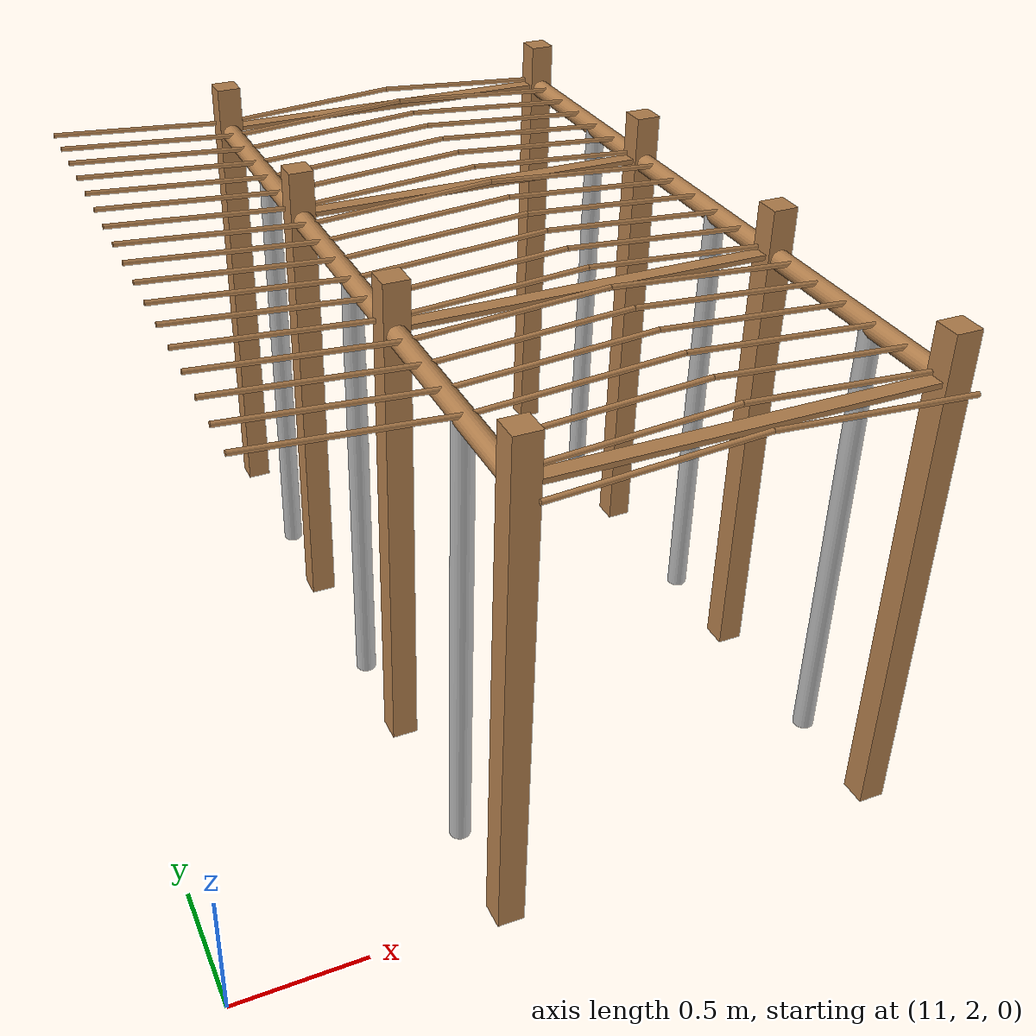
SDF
<sdf version="1.4">
 <model name="pergola">
  <include><name>post_90</name><pose>12.0 2.0 0 0 0 0</pose><uri>model://post</uri></include>
  <include><name>post_91</name><pose>12.0 3.0 0 0 0 0</pose><uri>model://post</uri></include>
  <include><name>post_92</name><pose>12.0 4.0 0 0 0 0</pose><uri>model://post</uri></include>
  <include><name>post_93</name><pose>12.0 5.0 0 0 0 0</pose><uri>model://post</uri></include>
  <include><name>post_101</name><pose>13.5 2.0 0 0 0 0</pose><uri>model://post</uri></include>
  <include><name>post_102</name><pose>13.5 3.0 0 0 0 0</pose><uri>model://post</uri></include>
  <include><name>post_103</name><pose>13.5 4.0 0 0 0 0</pose><uri>model://post</uri></include>
  <include><name>post_104</name><pose>13.5 5.0 0 0 0 0</pose><uri>model://post</uri></include>
  <link name="beam_90">
   <pose>12.75 2.0 1.81 0 0 0</pose>
   <collision name="collision"><geometry><box><size>1.5 0.06 0.02</size></box></geometry></collision>
   <visual name="visual">
    <geometry><box><size>1.5 0.06 0.02</size></box></geometry>
    <material><script><name>Gazebo/Wood</name></script></material>
   </visual>
   <inertial>
    <mass>5</mass>
    <inertia>
     <ixx>0.0016666666666666668</ixx>
     <ixy>0.0</ixy>
     <ixz>0.0</ixz>
     <iyy>0.9390000000000001</iyy>
     <iyz>0.0</iyz>
     <izz>0.9376666666666665</izz>
    </inertia>
   </inertial>
  </link>
  <link name="beam_91">
   <pose>12.75 3.0 1.81 0 0 0</pose>
   <collision name="collision"><geometry><box><size>1.5 0.06 0.02</size></box></geometry></collision>
   <visual name="visual">
    <geometry><box><size>1.5 0.06 0.02</size></box></geometry>
    <material><script><name>Gazebo/Wood</name></script></material>
   </visual>
   <inertial>
    <mass>5</mass>
    <inertia>
     <ixx>0.0016666666666666668</ixx>
     <ixy>0.0</ixy>
     <ixz>0.0</ixz>
     <iyy>0.9390000000000001</iyy>
     <iyz>0.0</iyz>
     <izz>0.9376666666666665</izz>
    </inertia>
   </inertial>
  </link>
  <link name="beam_92">
   <pose>12.75 4.0 1.81 0 0 0</pose>
   <collision name="collision"><geometry><box><size>1.5 0.06 0.02</size></box></geometry></collision>
   <visual name="visual">
    <geometry><box><size>1.5 0.06 0.02</size></box></geometry>
    <material><script><name>Gazebo/Wood</name></script></material>
   </visual>
   <inertial>
    <mass>5</mass>
    <inertia>
     <ixx>0.0016666666666666668</ixx>
     <ixy>0.0</ixy>
     <ixz>0.0</ixz>
     <iyy>0.9390000000000001</iyy>
     <iyz>0.0</iyz>
     <izz>0.9376666666666665</izz>
    </inertia>
   </inertial>
  </link>
  <link name="beam_93">
   <pose>12.75 5.0 1.81 0 0 0</pose>
   <collision name="collision"><geometry><box><size>1.5 0.06 0.02</size></box></geometry></collision>
   <visual name="visual">
    <geometry><box><size>1.5 0.06 0.02</size></box></geometry>
    <material><script><name>Gazebo/Wood</name></script></material>
   </visual>
   <inertial>
    <mass>5</mass>
    <inertia>
     <ixx>0.0016666666666666668</ixx>
     <ixy>0.0</ixy>
     <ixz>0.0</ixz>
     <iyy>0.9390000000000001</iyy>
     <iyz>0.0</iyz>
     <izz>0.9376666666666665</izz>
    </inertia>
   </inertial>
  </link>
  <include><name>tree_82</name><pose>12.0 2.4 0 0 0 0</pose><uri>model://tree_trunk</uri></include>
  <include><name>tree_83</name><pose>12.0 3.4 0 0 0 0</pose><uri>model://tree_trunk</uri></include>
  <include><name>tree_84</name><pose>12.0 4.4 0 0 0 0</pose><uri>model://tree_trunk</uri></include>
  <include><name>tree_92</name><pose>13.5 2.4 0 0 0 0</pose><uri>model://tree_trunk</uri></include>
  <include><name>tree_93</name><pose>13.5 3.4 0 0 0 0</pose><uri>model://tree_trunk</uri></include>
  <include><name>tree_94</name><pose>13.5 4.4 0 0 0 0</pose><uri>model://tree_trunk</uri></include>
  <link name="baseBranch_82">
   <pose>12.0 2.5 1.8 1.5707963267948966 0 0</pose>
   <collision name="collision">
    <geometry><cylinder><radius>0.04</radius><length>0.94</length></cylinder></geometry>
   </collision>
   <visual name="visual">
    <geometry><cylinder><radius>0.04</radius><length>0.94</length></cylinder></geometry>
    <material><script><name>Gazebo/WoodFloor</name></script></material>
   </visual>
   <inertial>
    <mass>10</mass>
    <inertia>
     <ixx>0.7403333333333334</ixx>
     <ixy>0.0</ixy>
     <ixz>0.0</ixz>
     <iyy>0.7403333333333334</iyy>
     <iyz>0.0</iyz>
     <izz>0.008</izz>
    </inertia>
   </inertial>
  </link>
  <link name="baseBranch_83">
   <pose>12.0 3.5 1.8 1.5707963267948966 0 0</pose>
   <collision name="collision">
    <geometry><cylinder><radius>0.04</radius><length>0.94</length></cylinder></geometry>
   </collision>
   <visual name="visual">
    <geometry><cylinder><radius>0.04</radius><length>0.94</length></cylinder></geometry>
    <material><script><name>Gazebo/WoodFloor</name></script></material>
   </visual>
   <inertial>
    <mass>10</mass>
    <inertia>
     <ixx>0.7403333333333334</ixx>
     <ixy>0.0</ixy>
     <ixz>0.0</ixz>
     <iyy>0.7403333333333334</iyy>
     <iyz>0.0</iyz>
     <izz>0.008</izz>
    </inertia>
   </inertial>
  </link>
  <link name="baseBranch_84">
   <pose>12.0 4.5 1.8 1.5707963267948966 0 0</pose>
   <collision name="collision">
    <geometry><cylinder><radius>0.04</radius><length>0.94</length></cylinder></geometry>
   </collision>
   <visual name="visual">
    <geometry><cylinder><radius>0.04</radius><length>0.94</length></cylinder></geometry>
    <material><script><name>Gazebo/WoodFloor</name></script></material>
   </visual>
   <inertial>
    <mass>10</mass>
    <inertia>
     <ixx>0.7403333333333334</ixx>
     <ixy>0.0</ixy>
     <ixz>0.0</ixz>
     <iyy>0.7403333333333334</iyy>
     <iyz>0.0</iyz>
     <izz>0.008</izz>
    </inertia>
   </inertial>
  </link>
  <link name="baseBranch_92">
   <pose>13.5 2.5 1.8 1.5707963267948966 0 0</pose>
   <collision name="collision">
    <geometry><cylinder><radius>0.04</radius><length>0.94</length></cylinder></geometry>
   </collision>
   <visual name="visual">
    <geometry><cylinder><radius>0.04</radius><length>0.94</length></cylinder></geometry>
    <material><script><name>Gazebo/WoodFloor</name></script></material>
   </visual>
   <inertial>
    <mass>10</mass>
    <inertia>
     <ixx>0.7403333333333334</ixx>
     <ixy>0.0</ixy>
     <ixz>0.0</ixz>
     <iyy>0.7403333333333334</iyy>
     <iyz>0.0</iyz>
     <izz>0.008</izz>
    </inertia>
   </inertial>
  </link>
  <link name="baseBranch_93">
   <pose>13.5 3.5 1.8 1.5707963267948966 0 0</pose>
   <collision name="collision">
    <geometry><cylinder><radius>0.04</radius><length>0.94</length></cylinder></geometry>
   </collision>
   <visual name="visual">
    <geometry><cylinder><radius>0.04</radius><length>0.94</length></cylinder></geometry>
    <material><script><name>Gazebo/WoodFloor</name></script></material>
   </visual>
   <inertial>
    <mass>10</mass>
    <inertia>
     <ixx>0.7403333333333334</ixx>
     <ixy>0.0</ixy>
     <ixz>0.0</ixz>
     <iyy>0.7403333333333334</iyy>
     <iyz>0.0</iyz>
     <izz>0.008</izz>
    </inertia>
   </inertial>
  </link>
  <link name="baseBranch_94">
   <pose>13.5 4.5 1.8 1.5707963267948966 0 0</pose>
   <collision name="collision">
    <geometry><cylinder><radius>0.04</radius><length>0.94</length></cylinder></geometry>
   </collision>
   <visual name="visual">
    <geometry><cylinder><radius>0.04</radius><length>0.94</length></cylinder></geometry>
    <material><script><name>Gazebo/WoodFloor</name></script></material>
   </visual>
   <inertial>
    <mass>10</mass>
    <inertia>
     <ixx>0.7403333333333334</ixx>
     <ixy>0.0</ixy>
     <ixz>0.0</ixz>
     <iyy>0.7403333333333334</iyy>
     <iyz>0.0</iyz>
     <izz>0.008</izz>
    </inertia>
   </inertial>
  </link>
  <link name="vine_869">
   <pose>11.625 2.363333333333333 1.85 0 -1.5042281630190728 0</pose>
   <collision name="collision">
    <geometry><cylinder><radius>0.01</radius><length>0.7516648189186453</length></cylinder></geometry>
   </collision>
   <visual name="visual">
    <geometry><cylinder><radius>0.01</radius><length>0.7516648189186453</length></cylinder></geometry>
    <material><script><name>Gazebo/WoodFloor</name></script></material>
   </visual>
   <inertial>
    <mass>5</mass>
    <inertia>
     <ixx>0.23554166666666657</ixx>
     <ixy>0.0</ixy>
     <ixz>0.0</ixz>
     <iyy>0.23554166666666657</iyy>
     <iyz>0.0</iyz>
     <izz>0.00025</izz>
    </inertia>
   </inertial>
  </link>
  <link name="vine_871">
   <pose>11.625 2.53 1.85 0 -1.5042281630190728 0</pose>
   <collision name="collision">
    <geometry><cylinder><radius>0.01</radius><length>0.7516648189186453</length></cylinder></geometry>
   </collision>
   <visual name="visual">
    <geometry><cylinder><radius>0.01</radius><length>0.7516648189186453</length></cylinder></geometry>
    <material><script><name>Gazebo/WoodFloor</name></script></material>
   </visual>
   <inertial>
    <mass>5</mass>
    <inertia>
     <ixx>0.23554166666666657</ixx>
     <ixy>0.0</ixy>
     <ixz>0.0</ixz>
     <iyy>0.23554166666666657</iyy>
     <iyz>0.0</iyz>
     <izz>0.00025</izz>
    </inertia>
   </inertial>
  </link>
  <link name="vine_873">
   <pose>11.625 2.6966666666666663 1.85 0 -1.5042281630190728 0</pose>
   <collision name="collision">
    <geometry><cylinder><radius>0.01</radius><length>0.7516648189186453</length></cylinder></geometry>
   </collision>
   <visual name="visual">
    <geometry><cylinder><radius>0.01</radius><length>0.7516648189186453</length></cylinder></geometry>
    <material><script><name>Gazebo/WoodFloor</name></script></material>
   </visual>
   <inertial>
    <mass>5</mass>
    <inertia>
     <ixx>0.23554166666666657</ixx>
     <ixy>0.0</ixy>
     <ixz>0.0</ixz>
     <iyy>0.23554166666666657</iyy>
     <iyz>0.0</iyz>
     <izz>0.00025</izz>
    </inertia>
   </inertial>
  </link>
  <link name="vine_875">
   <pose>11.625 2.863333333333333 1.85 0 -1.5042281630190728 0</pose>
   <collision name="collision">
    <geometry><cylinder><radius>0.01</radius><length>0.7516648189186453</length></cylinder></geometry>
   </collision>
   <visual name="visual">
    <geometry><cylinder><radius>0.01</radius><length>0.7516648189186453</length></cylinder></geometry>
    <material><script><name>Gazebo/WoodFloor</name></script></material>
   </visual>
   <inertial>
    <mass>5</mass>
    <inertia>
     <ixx>0.23554166666666657</ixx>
     <ixy>0.0</ixy>
     <ixz>0.0</ixz>
     <iyy>0.23554166666666657</iyy>
     <iyz>0.0</iyz>
     <izz>0.00025</izz>
    </inertia>
   </inertial>
  </link>
  <link name="vine_877">
   <pose>11.625 3.03 1.85 0 -1.5042281630190728 0</pose>
   <collision name="collision">
    <geometry><cylinder><radius>0.01</radius><length>0.7516648189186453</length></cylinder></geometry>
   </collision>
   <visual name="visual">
    <geometry><cylinder><radius>0.01</radius><length>0.7516648189186453</length></cylinder></geometry>
    <material><script><name>Gazebo/WoodFloor</name></script></material>
   </visual>
   <inertial>
    <mass>5</mass>
    <inertia>
     <ixx>0.23554166666666657</ixx>
     <ixy>0.0</ixy>
     <ixz>0.0</ixz>
     <iyy>0.23554166666666657</iyy>
     <iyz>0.0</iyz>
     <izz>0.00025</izz>
    </inertia>
   </inertial>
  </link>
  <link name="vine_879">
   <pose>11.625 3.1966666666666663 1.85 0 -1.5042281630190728 0</pose>
   <collision name="collision">
    <geometry><cylinder><radius>0.01</radius><length>0.7516648189186453</length></cylinder></geometry>
   </collision>
   <visual name="visual">
    <geometry><cylinder><radius>0.01</radius><length>0.7516648189186453</length></cylinder></geometry>
    <material><script><name>Gazebo/WoodFloor</name></script></material>
   </visual>
   <inertial>
    <mass>5</mass>
    <inertia>
     <ixx>0.23554166666666657</ixx>
     <ixy>0.0</ixy>
     <ixz>0.0</ixz>
     <iyy>0.23554166666666657</iyy>
     <iyz>0.0</iyz>
     <izz>0.00025</izz>
    </inertia>
   </inertial>
  </link>
  <link name="vine_881">
   <pose>11.625 3.363333333333333 1.85 0 -1.5042281630190728 0</pose>
   <collision name="collision">
    <geometry><cylinder><radius>0.01</radius><length>0.7516648189186453</length></cylinder></geometry>
   </collision>
   <visual name="visual">
    <geometry><cylinder><radius>0.01</radius><length>0.7516648189186453</length></cylinder></geometry>
    <material><script><name>Gazebo/WoodFloor</name></script></material>
   </visual>
   <inertial>
    <mass>5</mass>
    <inertia>
     <ixx>0.23554166666666657</ixx>
     <ixy>0.0</ixy>
     <ixz>0.0</ixz>
     <iyy>0.23554166666666657</iyy>
     <iyz>0.0</iyz>
     <izz>0.00025</izz>
    </inertia>
   </inertial>
  </link>
  <link name="vine_883">
   <pose>11.625 3.53 1.85 0 -1.5042281630190728 0</pose>
   <collision name="collision">
    <geometry><cylinder><radius>0.01</radius><length>0.7516648189186453</length></cylinder></geometry>
   </collision>
   <visual name="visual">
    <geometry><cylinder><radius>0.01</radius><length>0.7516648189186453</length></cylinder></geometry>
    <material><script><name>Gazebo/WoodFloor</name></script></material>
   </visual>
   <inertial>
    <mass>5</mass>
    <inertia>
     <ixx>0.23554166666666657</ixx>
     <ixy>0.0</ixy>
     <ixz>0.0</ixz>
     <iyy>0.23554166666666657</iyy>
     <iyz>0.0</iyz>
     <izz>0.00025</izz>
    </inertia>
   </inertial>
  </link>
  <link name="vine_885">
   <pose>11.625 3.6966666666666663 1.85 0 -1.5042281630190728 0</pose>
   <collision name="collision">
    <geometry><cylinder><radius>0.01</radius><length>0.7516648189186453</length></cylinder></geometry>
   </collision>
   <visual name="visual">
    <geometry><cylinder><radius>0.01</radius><length>0.7516648189186453</length></cylinder></geometry>
    <material><script><name>Gazebo/WoodFloor</name></script></material>
   </visual>
   <inertial>
    <mass>5</mass>
    <inertia>
     <ixx>0.23554166666666657</ixx>
     <ixy>0.0</ixy>
     <ixz>0.0</ixz>
     <iyy>0.23554166666666657</iyy>
     <iyz>0.0</iyz>
     <izz>0.00025</izz>
    </inertia>
   </inertial>
  </link>
  <link name="vine_887">
   <pose>11.625 3.863333333333333 1.85 0 -1.5042281630190728 0</pose>
   <collision name="collision">
    <geometry><cylinder><radius>0.01</radius><length>0.7516648189186453</length></cylinder></geometry>
   </collision>
   <visual name="visual">
    <geometry><cylinder><radius>0.01</radius><length>0.7516648189186453</length></cylinder></geometry>
    <material><script><name>Gazebo/WoodFloor</name></script></material>
   </visual>
   <inertial>
    <mass>5</mass>
    <inertia>
     <ixx>0.23554166666666657</ixx>
     <ixy>0.0</ixy>
     <ixz>0.0</ixz>
     <iyy>0.23554166666666657</iyy>
     <iyz>0.0</iyz>
     <izz>0.00025</izz>
    </inertia>
   </inertial>
  </link>
  <link name="vine_889">
   <pose>11.625 4.03 1.85 0 -1.5042281630190728 0</pose>
   <collision name="collision">
    <geometry><cylinder><radius>0.01</radius><length>0.7516648189186453</length></cylinder></geometry>
   </collision>
   <visual name="visual">
    <geometry><cylinder><radius>0.01</radius><length>0.7516648189186453</length></cylinder></geometry>
    <material><script><name>Gazebo/WoodFloor</name></script></material>
   </visual>
   <inertial>
    <mass>5</mass>
    <inertia>
     <ixx>0.23554166666666657</ixx>
     <ixy>0.0</ixy>
     <ixz>0.0</ixz>
     <iyy>0.23554166666666657</iyy>
     <iyz>0.0</iyz>
     <izz>0.00025</izz>
    </inertia>
   </inertial>
  </link>
  <link name="vine_891">
   <pose>11.625 4.196666666666666 1.85 0 -1.5042281630190728 0</pose>
   <collision name="collision">
    <geometry><cylinder><radius>0.01</radius><length>0.7516648189186453</length></cylinder></geometry>
   </collision>
   <visual name="visual">
    <geometry><cylinder><radius>0.01</radius><length>0.7516648189186453</length></cylinder></geometry>
    <material><script><name>Gazebo/WoodFloor</name></script></material>
   </visual>
   <inertial>
    <mass>5</mass>
    <inertia>
     <ixx>0.23554166666666657</ixx>
     <ixy>0.0</ixy>
     <ixz>0.0</ixz>
     <iyy>0.23554166666666657</iyy>
     <iyz>0.0</iyz>
     <izz>0.00025</izz>
    </inertia>
   </inertial>
  </link>
  <link name="vine_893">
   <pose>11.625 4.363333333333333 1.85 0 -1.5042281630190728 0</pose>
   <collision name="collision">
    <geometry><cylinder><radius>0.01</radius><length>0.7516648189186453</length></cylinder></geometry>
   </collision>
   <visual name="visual">
    <geometry><cylinder><radius>0.01</radius><length>0.7516648189186453</length></cylinder></geometry>
    <material><script><name>Gazebo/WoodFloor</name></script></material>
   </visual>
   <inertial>
    <mass>5</mass>
    <inertia>
     <ixx>0.23554166666666657</ixx>
     <ixy>0.0</ixy>
     <ixz>0.0</ixz>
     <iyy>0.23554166666666657</iyy>
     <iyz>0.0</iyz>
     <izz>0.00025</izz>
    </inertia>
   </inertial>
  </link>
  <link name="vine_895">
   <pose>11.625 4.53 1.85 0 -1.5042281630190728 0</pose>
   <collision name="collision">
    <geometry><cylinder><radius>0.01</radius><length>0.7516648189186453</length></cylinder></geometry>
   </collision>
   <visual name="visual">
    <geometry><cylinder><radius>0.01</radius><length>0.7516648189186453</length></cylinder></geometry>
    <material><script><name>Gazebo/WoodFloor</name></script></material>
   </visual>
   <inertial>
    <mass>5</mass>
    <inertia>
     <ixx>0.23554166666666657</ixx>
     <ixy>0.0</ixy>
     <ixz>0.0</ixz>
     <iyy>0.23554166666666657</iyy>
     <iyz>0.0</iyz>
     <izz>0.00025</izz>
    </inertia>
   </inertial>
  </link>
  <link name="vine_897">
   <pose>11.625 4.696666666666666 1.85 0 -1.5042281630190728 0</pose>
   <collision name="collision">
    <geometry><cylinder><radius>0.01</radius><length>0.7516648189186453</length></cylinder></geometry>
   </collision>
   <visual name="visual">
    <geometry><cylinder><radius>0.01</radius><length>0.7516648189186453</length></cylinder></geometry>
    <material><script><name>Gazebo/WoodFloor</name></script></material>
   </visual>
   <inertial>
    <mass>5</mass>
    <inertia>
     <ixx>0.23554166666666657</ixx>
     <ixy>0.0</ixy>
     <ixz>0.0</ixz>
     <iyy>0.23554166666666657</iyy>
     <iyz>0.0</iyz>
     <izz>0.00025</izz>
    </inertia>
   </inertial>
  </link>
  <link name="vine_899">
   <pose>11.625 4.863333333333333 1.85 0 -1.5042281630190728 0</pose>
   <collision name="collision">
    <geometry><cylinder><radius>0.01</radius><length>0.7516648189186453</length></cylinder></geometry>
   </collision>
   <visual name="visual">
    <geometry><cylinder><radius>0.01</radius><length>0.7516648189186453</length></cylinder></geometry>
    <material><script><name>Gazebo/WoodFloor</name></script></material>
   </visual>
   <inertial>
    <mass>5</mass>
    <inertia>
     <ixx>0.23554166666666657</ixx>
     <ixy>0.0</ixy>
     <ixz>0.0</ixz>
     <iyy>0.23554166666666657</iyy>
     <iyz>0.0</iyz>
     <izz>0.00025</izz>
    </inertia>
   </inertial>
  </link>
  <link name="vine_901">
   <pose>11.625 5.03 1.85 0 -1.5042281630190728 0</pose>
   <collision name="collision">
    <geometry><cylinder><radius>0.01</radius><length>0.7516648189186453</length></cylinder></geometry>
   </collision>
   <visual name="visual">
    <geometry><cylinder><radius>0.01</radius><length>0.7516648189186453</length></cylinder></geometry>
    <material><script><name>Gazebo/WoodFloor</name></script></material>
   </visual>
   <inertial>
    <mass>5</mass>
    <inertia>
     <ixx>0.23554166666666657</ixx>
     <ixy>0.0</ixy>
     <ixz>0.0</ixz>
     <iyy>0.23554166666666657</iyy>
     <iyz>0.0</iyz>
     <izz>0.00025</izz>
    </inertia>
   </inertial>
  </link>
  <link name="vine_982">
   <pose>12.375 1.8633333333333333 1.85 0 1.5042281630190728 0</pose>
   <collision name="collision">
    <geometry><cylinder><radius>0.01</radius><length>0.7516648189186453</length></cylinder></geometry>
   </collision>
   <visual name="visual">
    <geometry><cylinder><radius>0.01</radius><length>0.7516648189186453</length></cylinder></geometry>
    <material><script><name>Gazebo/WoodFloor</name></script></material>
   </visual>
   <inertial>
    <mass>5</mass>
    <inertia>
     <ixx>0.23554166666666657</ixx>
     <ixy>0.0</ixy>
     <ixz>0.0</ixz>
     <iyy>0.23554166666666657</iyy>
     <iyz>0.0</iyz>
     <izz>0.00025</izz>
    </inertia>
   </inertial>
  </link>
  <link name="vine_983">
   <pose>13.125 1.8633333333333333 1.85 0 -1.5042281630190728 0</pose>
   <collision name="collision">
    <geometry><cylinder><radius>0.01</radius><length>0.7516648189186453</length></cylinder></geometry>
   </collision>
   <visual name="visual">
    <geometry><cylinder><radius>0.01</radius><length>0.7516648189186453</length></cylinder></geometry>
    <material><script><name>Gazebo/WoodFloor</name></script></material>
   </visual>
   <inertial>
    <mass>5</mass>
    <inertia>
     <ixx>0.23554166666666657</ixx>
     <ixy>0.0</ixy>
     <ixz>0.0</ixz>
     <iyy>0.23554166666666657</iyy>
     <iyz>0.0</iyz>
     <izz>0.00025</izz>
    </inertia>
   </inertial>
  </link>
  <link name="vine_984">
   <pose>12.375 2.03 1.85 0 1.5042281630190728 0</pose>
   <collision name="collision">
    <geometry><cylinder><radius>0.01</radius><length>0.7516648189186453</length></cylinder></geometry>
   </collision>
   <visual name="visual">
    <geometry><cylinder><radius>0.01</radius><length>0.7516648189186453</length></cylinder></geometry>
    <material><script><name>Gazebo/WoodFloor</name></script></material>
   </visual>
   <inertial>
    <mass>5</mass>
    <inertia>
     <ixx>0.23554166666666657</ixx>
     <ixy>0.0</ixy>
     <ixz>0.0</ixz>
     <iyy>0.23554166666666657</iyy>
     <iyz>0.0</iyz>
     <izz>0.00025</izz>
    </inertia>
   </inertial>
  </link>
  <link name="vine_985">
   <pose>13.125 2.03 1.85 0 -1.5042281630190728 0</pose>
   <collision name="collision">
    <geometry><cylinder><radius>0.01</radius><length>0.7516648189186453</length></cylinder></geometry>
   </collision>
   <visual name="visual">
    <geometry><cylinder><radius>0.01</radius><length>0.7516648189186453</length></cylinder></geometry>
    <material><script><name>Gazebo/WoodFloor</name></script></material>
   </visual>
   <inertial>
    <mass>5</mass>
    <inertia>
     <ixx>0.23554166666666657</ixx>
     <ixy>0.0</ixy>
     <ixz>0.0</ixz>
     <iyy>0.23554166666666657</iyy>
     <iyz>0.0</iyz>
     <izz>0.00025</izz>
    </inertia>
   </inertial>
  </link>
  <link name="vine_986">
   <pose>12.375 2.1966666666666663 1.85 0 1.5042281630190728 0</pose>
   <collision name="collision">
    <geometry><cylinder><radius>0.01</radius><length>0.7516648189186453</length></cylinder></geometry>
   </collision>
   <visual name="visual">
    <geometry><cylinder><radius>0.01</radius><length>0.7516648189186453</length></cylinder></geometry>
    <material><script><name>Gazebo/WoodFloor</name></script></material>
   </visual>
   <inertial>
    <mass>5</mass>
    <inertia>
     <ixx>0.23554166666666657</ixx>
     <ixy>0.0</ixy>
     <ixz>0.0</ixz>
     <iyy>0.23554166666666657</iyy>
     <iyz>0.0</iyz>
     <izz>0.00025</izz>
    </inertia>
   </inertial>
  </link>
  <link name="vine_987">
   <pose>13.125 2.1966666666666663 1.85 0 -1.5042281630190728 0</pose>
   <collision name="collision">
    <geometry><cylinder><radius>0.01</radius><length>0.7516648189186453</length></cylinder></geometry>
   </collision>
   <visual name="visual">
    <geometry><cylinder><radius>0.01</radius><length>0.7516648189186453</length></cylinder></geometry>
    <material><script><name>Gazebo/WoodFloor</name></script></material>
   </visual>
   <inertial>
    <mass>5</mass>
    <inertia>
     <ixx>0.23554166666666657</ixx>
     <ixy>0.0</ixy>
     <ixz>0.0</ixz>
     <iyy>0.23554166666666657</iyy>
     <iyz>0.0</iyz>
     <izz>0.00025</izz>
    </inertia>
   </inertial>
  </link>
  <link name="vine_988">
   <pose>12.375 2.363333333333333 1.85 0 1.5042281630190728 0</pose>
   <collision name="collision">
    <geometry><cylinder><radius>0.01</radius><length>0.7516648189186453</length></cylinder></geometry>
   </collision>
   <visual name="visual">
    <geometry><cylinder><radius>0.01</radius><length>0.7516648189186453</length></cylinder></geometry>
    <material><script><name>Gazebo/WoodFloor</name></script></material>
   </visual>
   <inertial>
    <mass>5</mass>
    <inertia>
     <ixx>0.23554166666666657</ixx>
     <ixy>0.0</ixy>
     <ixz>0.0</ixz>
     <iyy>0.23554166666666657</iyy>
     <iyz>0.0</iyz>
     <izz>0.00025</izz>
    </inertia>
   </inertial>
  </link>
  <link name="vine_989">
   <pose>13.125 2.363333333333333 1.85 0 -1.5042281630190728 0</pose>
   <collision name="collision">
    <geometry><cylinder><radius>0.01</radius><length>0.7516648189186453</length></cylinder></geometry>
   </collision>
   <visual name="visual">
    <geometry><cylinder><radius>0.01</radius><length>0.7516648189186453</length></cylinder></geometry>
    <material><script><name>Gazebo/WoodFloor</name></script></material>
   </visual>
   <inertial>
    <mass>5</mass>
    <inertia>
     <ixx>0.23554166666666657</ixx>
     <ixy>0.0</ixy>
     <ixz>0.0</ixz>
     <iyy>0.23554166666666657</iyy>
     <iyz>0.0</iyz>
     <izz>0.00025</izz>
    </inertia>
   </inertial>
  </link>
  <link name="vine_990">
   <pose>12.375 2.53 1.85 0 1.5042281630190728 0</pose>
   <collision name="collision">
    <geometry><cylinder><radius>0.01</radius><length>0.7516648189186453</length></cylinder></geometry>
   </collision>
   <visual name="visual">
    <geometry><cylinder><radius>0.01</radius><length>0.7516648189186453</length></cylinder></geometry>
    <material><script><name>Gazebo/WoodFloor</name></script></material>
   </visual>
   <inertial>
    <mass>5</mass>
    <inertia>
     <ixx>0.23554166666666657</ixx>
     <ixy>0.0</ixy>
     <ixz>0.0</ixz>
     <iyy>0.23554166666666657</iyy>
     <iyz>0.0</iyz>
     <izz>0.00025</izz>
    </inertia>
   </inertial>
  </link>
  <link name="vine_991">
   <pose>13.125 2.53 1.85 0 -1.5042281630190728 0</pose>
   <collision name="collision">
    <geometry><cylinder><radius>0.01</radius><length>0.7516648189186453</length></cylinder></geometry>
   </collision>
   <visual name="visual">
    <geometry><cylinder><radius>0.01</radius><length>0.7516648189186453</length></cylinder></geometry>
    <material><script><name>Gazebo/WoodFloor</name></script></material>
   </visual>
   <inertial>
    <mass>5</mass>
    <inertia>
     <ixx>0.23554166666666657</ixx>
     <ixy>0.0</ixy>
     <ixz>0.0</ixz>
     <iyy>0.23554166666666657</iyy>
     <iyz>0.0</iyz>
     <izz>0.00025</izz>
    </inertia>
   </inertial>
  </link>
  <link name="vine_992">
   <pose>12.375 2.6966666666666663 1.85 0 1.5042281630190728 0</pose>
   <collision name="collision">
    <geometry><cylinder><radius>0.01</radius><length>0.7516648189186453</length></cylinder></geometry>
   </collision>
   <visual name="visual">
    <geometry><cylinder><radius>0.01</radius><length>0.7516648189186453</length></cylinder></geometry>
    <material><script><name>Gazebo/WoodFloor</name></script></material>
   </visual>
   <inertial>
    <mass>5</mass>
    <inertia>
     <ixx>0.23554166666666657</ixx>
     <ixy>0.0</ixy>
     <ixz>0.0</ixz>
     <iyy>0.23554166666666657</iyy>
     <iyz>0.0</iyz>
     <izz>0.00025</izz>
    </inertia>
   </inertial>
  </link>
  <link name="vine_993">
   <pose>13.125 2.6966666666666663 1.85 0 -1.5042281630190728 0</pose>
   <collision name="collision">
    <geometry><cylinder><radius>0.01</radius><length>0.7516648189186453</length></cylinder></geometry>
   </collision>
   <visual name="visual">
    <geometry><cylinder><radius>0.01</radius><length>0.7516648189186453</length></cylinder></geometry>
    <material><script><name>Gazebo/WoodFloor</name></script></material>
   </visual>
   <inertial>
    <mass>5</mass>
    <inertia>
     <ixx>0.23554166666666657</ixx>
     <ixy>0.0</ixy>
     <ixz>0.0</ixz>
     <iyy>0.23554166666666657</iyy>
     <iyz>0.0</iyz>
     <izz>0.00025</izz>
    </inertia>
   </inertial>
  </link>
  <link name="vine_994">
   <pose>12.375 2.863333333333333 1.85 0 1.5042281630190728 0</pose>
   <collision name="collision">
    <geometry><cylinder><radius>0.01</radius><length>0.7516648189186453</length></cylinder></geometry>
   </collision>
   <visual name="visual">
    <geometry><cylinder><radius>0.01</radius><length>0.7516648189186453</length></cylinder></geometry>
    <material><script><name>Gazebo/WoodFloor</name></script></material>
   </visual>
   <inertial>
    <mass>5</mass>
    <inertia>
     <ixx>0.23554166666666657</ixx>
     <ixy>0.0</ixy>
     <ixz>0.0</ixz>
     <iyy>0.23554166666666657</iyy>
     <iyz>0.0</iyz>
     <izz>0.00025</izz>
    </inertia>
   </inertial>
  </link>
  <link name="vine_995">
   <pose>13.125 2.863333333333333 1.85 0 -1.5042281630190728 0</pose>
   <collision name="collision">
    <geometry><cylinder><radius>0.01</radius><length>0.7516648189186453</length></cylinder></geometry>
   </collision>
   <visual name="visual">
    <geometry><cylinder><radius>0.01</radius><length>0.7516648189186453</length></cylinder></geometry>
    <material><script><name>Gazebo/WoodFloor</name></script></material>
   </visual>
   <inertial>
    <mass>5</mass>
    <inertia>
     <ixx>0.23554166666666657</ixx>
     <ixy>0.0</ixy>
     <ixz>0.0</ixz>
     <iyy>0.23554166666666657</iyy>
     <iyz>0.0</iyz>
     <izz>0.00025</izz>
    </inertia>
   </inertial>
  </link>
  <link name="vine_996">
   <pose>12.375 3.03 1.85 0 1.5042281630190728 0</pose>
   <collision name="collision">
    <geometry><cylinder><radius>0.01</radius><length>0.7516648189186453</length></cylinder></geometry>
   </collision>
   <visual name="visual">
    <geometry><cylinder><radius>0.01</radius><length>0.7516648189186453</length></cylinder></geometry>
    <material><script><name>Gazebo/WoodFloor</name></script></material>
   </visual>
   <inertial>
    <mass>5</mass>
    <inertia>
     <ixx>0.23554166666666657</ixx>
     <ixy>0.0</ixy>
     <ixz>0.0</ixz>
     <iyy>0.23554166666666657</iyy>
     <iyz>0.0</iyz>
     <izz>0.00025</izz>
    </inertia>
   </inertial>
  </link>
  <link name="vine_997">
   <pose>13.125 3.03 1.85 0 -1.5042281630190728 0</pose>
   <collision name="collision">
    <geometry><cylinder><radius>0.01</radius><length>0.7516648189186453</length></cylinder></geometry>
   </collision>
   <visual name="visual">
    <geometry><cylinder><radius>0.01</radius><length>0.7516648189186453</length></cylinder></geometry>
    <material><script><name>Gazebo/WoodFloor</name></script></material>
   </visual>
   <inertial>
    <mass>5</mass>
    <inertia>
     <ixx>0.23554166666666657</ixx>
     <ixy>0.0</ixy>
     <ixz>0.0</ixz>
     <iyy>0.23554166666666657</iyy>
     <iyz>0.0</iyz>
     <izz>0.00025</izz>
    </inertia>
   </inertial>
  </link>
  <link name="vine_998">
   <pose>12.375 3.1966666666666663 1.85 0 1.5042281630190728 0</pose>
   <collision name="collision">
    <geometry><cylinder><radius>0.01</radius><length>0.7516648189186453</length></cylinder></geometry>
   </collision>
   <visual name="visual">
    <geometry><cylinder><radius>0.01</radius><length>0.7516648189186453</length></cylinder></geometry>
    <material><script><name>Gazebo/WoodFloor</name></script></material>
   </visual>
   <inertial>
    <mass>5</mass>
    <inertia>
     <ixx>0.23554166666666657</ixx>
     <ixy>0.0</ixy>
     <ixz>0.0</ixz>
     <iyy>0.23554166666666657</iyy>
     <iyz>0.0</iyz>
     <izz>0.00025</izz>
    </inertia>
   </inertial>
  </link>
  <link name="vine_999">
   <pose>13.125 3.1966666666666663 1.85 0 -1.5042281630190728 0</pose>
   <collision name="collision">
    <geometry><cylinder><radius>0.01</radius><length>0.7516648189186453</length></cylinder></geometry>
   </collision>
   <visual name="visual">
    <geometry><cylinder><radius>0.01</radius><length>0.7516648189186453</length></cylinder></geometry>
    <material><script><name>Gazebo/WoodFloor</name></script></material>
   </visual>
   <inertial>
    <mass>5</mass>
    <inertia>
     <ixx>0.23554166666666657</ixx>
     <ixy>0.0</ixy>
     <ixz>0.0</ixz>
     <iyy>0.23554166666666657</iyy>
     <iyz>0.0</iyz>
     <izz>0.00025</izz>
    </inertia>
   </inertial>
  </link>
  <link name="vine_1000">
   <pose>12.375 3.363333333333333 1.85 0 1.5042281630190728 0</pose>
   <collision name="collision">
    <geometry><cylinder><radius>0.01</radius><length>0.7516648189186453</length></cylinder></geometry>
   </collision>
   <visual name="visual">
    <geometry><cylinder><radius>0.01</radius><length>0.7516648189186453</length></cylinder></geometry>
    <material><script><name>Gazebo/WoodFloor</name></script></material>
   </visual>
   <inertial>
    <mass>5</mass>
    <inertia>
     <ixx>0.23554166666666657</ixx>
     <ixy>0.0</ixy>
     <ixz>0.0</ixz>
     <iyy>0.23554166666666657</iyy>
     <iyz>0.0</iyz>
     <izz>0.00025</izz>
    </inertia>
   </inertial>
  </link>
  <link name="vine_1001">
   <pose>13.125 3.363333333333333 1.85 0 -1.5042281630190728 0</pose>
   <collision name="collision">
    <geometry><cylinder><radius>0.01</radius><length>0.7516648189186453</length></cylinder></geometry>
   </collision>
   <visual name="visual">
    <geometry><cylinder><radius>0.01</radius><length>0.7516648189186453</length></cylinder></geometry>
    <material><script><name>Gazebo/WoodFloor</name></script></material>
   </visual>
   <inertial>
    <mass>5</mass>
    <inertia>
     <ixx>0.23554166666666657</ixx>
     <ixy>0.0</ixy>
     <ixz>0.0</ixz>
     <iyy>0.23554166666666657</iyy>
     <iyz>0.0</iyz>
     <izz>0.00025</izz>
    </inertia>
   </inertial>
  </link>
  <link name="vine_1002">
   <pose>12.375 3.53 1.85 0 1.5042281630190728 0</pose>
   <collision name="collision">
    <geometry><cylinder><radius>0.01</radius><length>0.7516648189186453</length></cylinder></geometry>
   </collision>
   <visual name="visual">
    <geometry><cylinder><radius>0.01</radius><length>0.7516648189186453</length></cylinder></geometry>
    <material><script><name>Gazebo/WoodFloor</name></script></material>
   </visual>
   <inertial>
    <mass>5</mass>
    <inertia>
     <ixx>0.23554166666666657</ixx>
     <ixy>0.0</ixy>
     <ixz>0.0</ixz>
     <iyy>0.23554166666666657</iyy>
     <iyz>0.0</iyz>
     <izz>0.00025</izz>
    </inertia>
   </inertial>
  </link>
  <link name="vine_1003">
   <pose>13.125 3.53 1.85 0 -1.5042281630190728 0</pose>
   <collision name="collision">
    <geometry><cylinder><radius>0.01</radius><length>0.7516648189186453</length></cylinder></geometry>
   </collision>
   <visual name="visual">
    <geometry><cylinder><radius>0.01</radius><length>0.7516648189186453</length></cylinder></geometry>
    <material><script><name>Gazebo/WoodFloor</name></script></material>
   </visual>
   <inertial>
    <mass>5</mass>
    <inertia>
     <ixx>0.23554166666666657</ixx>
     <ixy>0.0</ixy>
     <ixz>0.0</ixz>
     <iyy>0.23554166666666657</iyy>
     <iyz>0.0</iyz>
     <izz>0.00025</izz>
    </inertia>
   </inertial>
  </link>
  <link name="vine_1004">
   <pose>12.375 3.6966666666666663 1.85 0 1.5042281630190728 0</pose>
   <collision name="collision">
    <geometry><cylinder><radius>0.01</radius><length>0.7516648189186453</length></cylinder></geometry>
   </collision>
   <visual name="visual">
    <geometry><cylinder><radius>0.01</radius><length>0.7516648189186453</length></cylinder></geometry>
    <material><script><name>Gazebo/WoodFloor</name></script></material>
   </visual>
   <inertial>
    <mass>5</mass>
    <inertia>
     <ixx>0.23554166666666657</ixx>
     <ixy>0.0</ixy>
     <ixz>0.0</ixz>
     <iyy>0.23554166666666657</iyy>
     <iyz>0.0</iyz>
     <izz>0.00025</izz>
    </inertia>
   </inertial>
  </link>
  <link name="vine_1005">
   <pose>13.125 3.6966666666666663 1.85 0 -1.5042281630190728 0</pose>
   <collision name="collision">
    <geometry><cylinder><radius>0.01</radius><length>0.7516648189186453</length></cylinder></geometry>
   </collision>
   <visual name="visual">
    <geometry><cylinder><radius>0.01</radius><length>0.7516648189186453</length></cylinder></geometry>
    <material><script><name>Gazebo/WoodFloor</name></script></material>
   </visual>
   <inertial>
    <mass>5</mass>
    <inertia>
     <ixx>0.23554166666666657</ixx>
     <ixy>0.0</ixy>
     <ixz>0.0</ixz>
     <iyy>0.23554166666666657</iyy>
     <iyz>0.0</iyz>
     <izz>0.00025</izz>
    </inertia>
   </inertial>
  </link>
  <link name="vine_1006">
   <pose>12.375 3.863333333333333 1.85 0 1.5042281630190728 0</pose>
   <collision name="collision">
    <geometry><cylinder><radius>0.01</radius><length>0.7516648189186453</length></cylinder></geometry>
   </collision>
   <visual name="visual">
    <geometry><cylinder><radius>0.01</radius><length>0.7516648189186453</length></cylinder></geometry>
    <material><script><name>Gazebo/WoodFloor</name></script></material>
   </visual>
   <inertial>
    <mass>5</mass>
    <inertia>
     <ixx>0.23554166666666657</ixx>
     <ixy>0.0</ixy>
     <ixz>0.0</ixz>
     <iyy>0.23554166666666657</iyy>
     <iyz>0.0</iyz>
     <izz>0.00025</izz>
    </inertia>
   </inertial>
  </link>
  <link name="vine_1007">
   <pose>13.125 3.863333333333333 1.85 0 -1.5042281630190728 0</pose>
   <collision name="collision">
    <geometry><cylinder><radius>0.01</radius><length>0.7516648189186453</length></cylinder></geometry>
   </collision>
   <visual name="visual">
    <geometry><cylinder><radius>0.01</radius><length>0.7516648189186453</length></cylinder></geometry>
    <material><script><name>Gazebo/WoodFloor</name></script></material>
   </visual>
   <inertial>
    <mass>5</mass>
    <inertia>
     <ixx>0.23554166666666657</ixx>
     <ixy>0.0</ixy>
     <ixz>0.0</ixz>
     <iyy>0.23554166666666657</iyy>
     <iyz>0.0</iyz>
     <izz>0.00025</izz>
    </inertia>
   </inertial>
  </link>
  <link name="vine_1008">
   <pose>12.375 4.03 1.85 0 1.5042281630190728 0</pose>
   <collision name="collision">
    <geometry><cylinder><radius>0.01</radius><length>0.7516648189186453</length></cylinder></geometry>
   </collision>
   <visual name="visual">
    <geometry><cylinder><radius>0.01</radius><length>0.7516648189186453</length></cylinder></geometry>
    <material><script><name>Gazebo/WoodFloor</name></script></material>
   </visual>
   <inertial>
    <mass>5</mass>
    <inertia>
     <ixx>0.23554166666666657</ixx>
     <ixy>0.0</ixy>
     <ixz>0.0</ixz>
     <iyy>0.23554166666666657</iyy>
     <iyz>0.0</iyz>
     <izz>0.00025</izz>
    </inertia>
   </inertial>
  </link>
  <link name="vine_1009">
   <pose>13.125 4.03 1.85 0 -1.5042281630190728 0</pose>
   <collision name="collision">
    <geometry><cylinder><radius>0.01</radius><length>0.7516648189186453</length></cylinder></geometry>
   </collision>
   <visual name="visual">
    <geometry><cylinder><radius>0.01</radius><length>0.7516648189186453</length></cylinder></geometry>
    <material><script><name>Gazebo/WoodFloor</name></script></material>
   </visual>
   <inertial>
    <mass>5</mass>
    <inertia>
     <ixx>0.23554166666666657</ixx>
     <ixy>0.0</ixy>
     <ixz>0.0</ixz>
     <iyy>0.23554166666666657</iyy>
     <iyz>0.0</iyz>
     <izz>0.00025</izz>
    </inertia>
   </inertial>
  </link>
  <link name="vine_1010">
   <pose>12.375 4.196666666666666 1.85 0 1.5042281630190728 0</pose>
   <collision name="collision">
    <geometry><cylinder><radius>0.01</radius><length>0.7516648189186453</length></cylinder></geometry>
   </collision>
   <visual name="visual">
    <geometry><cylinder><radius>0.01</radius><length>0.7516648189186453</length></cylinder></geometry>
    <material><script><name>Gazebo/WoodFloor</name></script></material>
   </visual>
   <inertial>
    <mass>5</mass>
    <inertia>
     <ixx>0.23554166666666657</ixx>
     <ixy>0.0</ixy>
     <ixz>0.0</ixz>
     <iyy>0.23554166666666657</iyy>
     <iyz>0.0</iyz>
     <izz>0.00025</izz>
    </inertia>
   </inertial>
  </link>
  <link name="vine_1011">
   <pose>13.125 4.196666666666666 1.85 0 -1.5042281630190728 0</pose>
   <collision name="collision">
    <geometry><cylinder><radius>0.01</radius><length>0.7516648189186453</length></cylinder></geometry>
   </collision>
   <visual name="visual">
    <geometry><cylinder><radius>0.01</radius><length>0.7516648189186453</length></cylinder></geometry>
    <material><script><name>Gazebo/WoodFloor</name></script></material>
   </visual>
   <inertial>
    <mass>5</mass>
    <inertia>
     <ixx>0.23554166666666657</ixx>
     <ixy>0.0</ixy>
     <ixz>0.0</ixz>
     <iyy>0.23554166666666657</iyy>
     <iyz>0.0</iyz>
     <izz>0.00025</izz>
    </inertia>
   </inertial>
  </link>
  <link name="vine_1012">
   <pose>12.375 4.363333333333333 1.85 0 1.5042281630190728 0</pose>
   <collision name="collision">
    <geometry><cylinder><radius>0.01</radius><length>0.7516648189186453</length></cylinder></geometry>
   </collision>
   <visual name="visual">
    <geometry><cylinder><radius>0.01</radius><length>0.7516648189186453</length></cylinder></geometry>
    <material><script><name>Gazebo/WoodFloor</name></script></material>
   </visual>
   <inertial>
    <mass>5</mass>
    <inertia>
     <ixx>0.23554166666666657</ixx>
     <ixy>0.0</ixy>
     <ixz>0.0</ixz>
     <iyy>0.23554166666666657</iyy>
     <iyz>0.0</iyz>
     <izz>0.00025</izz>
    </inertia>
   </inertial>
  </link>
  <link name="vine_1013">
   <pose>13.125 4.363333333333333 1.85 0 -1.5042281630190728 0</pose>
   <collision name="collision">
    <geometry><cylinder><radius>0.01</radius><length>0.7516648189186453</length></cylinder></geometry>
   </collision>
   <visual name="visual">
    <geometry><cylinder><radius>0.01</radius><length>0.7516648189186453</length></cylinder></geometry>
    <material><script><name>Gazebo/WoodFloor</name></script></material>
   </visual>
   <inertial>
    <mass>5</mass>
    <inertia>
     <ixx>0.23554166666666657</ixx>
     <ixy>0.0</ixy>
     <ixz>0.0</ixz>
     <iyy>0.23554166666666657</iyy>
     <iyz>0.0</iyz>
     <izz>0.00025</izz>
    </inertia>
   </inertial>
  </link>
  <link name="vine_1014">
   <pose>12.375 4.53 1.85 0 1.5042281630190728 0</pose>
   <collision name="collision">
    <geometry><cylinder><radius>0.01</radius><length>0.7516648189186453</length></cylinder></geometry>
   </collision>
   <visual name="visual">
    <geometry><cylinder><radius>0.01</radius><length>0.7516648189186453</length></cylinder></geometry>
    <material><script><name>Gazebo/WoodFloor</name></script></material>
   </visual>
   <inertial>
    <mass>5</mass>
    <inertia>
     <ixx>0.23554166666666657</ixx>
     <ixy>0.0</ixy>
     <ixz>0.0</ixz>
     <iyy>0.23554166666666657</iyy>
     <iyz>0.0</iyz>
     <izz>0.00025</izz>
    </inertia>
   </inertial>
  </link>
  <link name="vine_1015">
   <pose>13.125 4.53 1.85 0 -1.5042281630190728 0</pose>
   <collision name="collision">
    <geometry><cylinder><radius>0.01</radius><length>0.7516648189186453</length></cylinder></geometry>
   </collision>
   <visual name="visual">
    <geometry><cylinder><radius>0.01</radius><length>0.7516648189186453</length></cylinder></geometry>
    <material><script><name>Gazebo/WoodFloor</name></script></material>
   </visual>
   <inertial>
    <mass>5</mass>
    <inertia>
     <ixx>0.23554166666666657</ixx>
     <ixy>0.0</ixy>
     <ixz>0.0</ixz>
     <iyy>0.23554166666666657</iyy>
     <iyz>0.0</iyz>
     <izz>0.00025</izz>
    </inertia>
   </inertial>
  </link>
  <link name="vine_1016">
   <pose>12.375 4.696666666666666 1.85 0 1.5042281630190728 0</pose>
   <collision name="collision">
    <geometry><cylinder><radius>0.01</radius><length>0.7516648189186453</length></cylinder></geometry>
   </collision>
   <visual name="visual">
    <geometry><cylinder><radius>0.01</radius><length>0.7516648189186453</length></cylinder></geometry>
    <material><script><name>Gazebo/WoodFloor</name></script></material>
   </visual>
   <inertial>
    <mass>5</mass>
    <inertia>
     <ixx>0.23554166666666657</ixx>
     <ixy>0.0</ixy>
     <ixz>0.0</ixz>
     <iyy>0.23554166666666657</iyy>
     <iyz>0.0</iyz>
     <izz>0.00025</izz>
    </inertia>
   </inertial>
  </link>
  <link name="vine_1017">
   <pose>13.125 4.696666666666666 1.85 0 -1.5042281630190728 0</pose>
   <collision name="collision">
    <geometry><cylinder><radius>0.01</radius><length>0.7516648189186453</length></cylinder></geometry>
   </collision>
   <visual name="visual">
    <geometry><cylinder><radius>0.01</radius><length>0.7516648189186453</length></cylinder></geometry>
    <material><script><name>Gazebo/WoodFloor</name></script></material>
   </visual>
   <inertial>
    <mass>5</mass>
    <inertia>
     <ixx>0.23554166666666657</ixx>
     <ixy>0.0</ixy>
     <ixz>0.0</ixz>
     <iyy>0.23554166666666657</iyy>
     <iyz>0.0</iyz>
     <izz>0.00025</izz>
    </inertia>
   </inertial>
  </link>
  <link name="vine_1018">
   <pose>12.375 4.863333333333333 1.85 0 1.5042281630190728 0</pose>
   <collision name="collision">
    <geometry><cylinder><radius>0.01</radius><length>0.7516648189186453</length></cylinder></geometry>
   </collision>
   <visual name="visual">
    <geometry><cylinder><radius>0.01</radius><length>0.7516648189186453</length></cylinder></geometry>
    <material><script><name>Gazebo/WoodFloor</name></script></material>
   </visual>
   <inertial>
    <mass>5</mass>
    <inertia>
     <ixx>0.23554166666666657</ixx>
     <ixy>0.0</ixy>
     <ixz>0.0</ixz>
     <iyy>0.23554166666666657</iyy>
     <iyz>0.0</iyz>
     <izz>0.00025</izz>
    </inertia>
   </inertial>
  </link>
  <link name="vine_1019">
   <pose>13.125 4.863333333333333 1.85 0 -1.5042281630190728 0</pose>
   <collision name="collision">
    <geometry><cylinder><radius>0.01</radius><length>0.7516648189186453</length></cylinder></geometry>
   </collision>
   <visual name="visual">
    <geometry><cylinder><radius>0.01</radius><length>0.7516648189186453</length></cylinder></geometry>
    <material><script><name>Gazebo/WoodFloor</name></script></material>
   </visual>
   <inertial>
    <mass>5</mass>
    <inertia>
     <ixx>0.23554166666666657</ixx>
     <ixy>0.0</ixy>
     <ixz>0.0</ixz>
     <iyy>0.23554166666666657</iyy>
     <iyz>0.0</iyz>
     <izz>0.00025</izz>
    </inertia>
   </inertial>
  </link>
  <link name="vine_1020">
   <pose>12.375 5.03 1.85 0 1.5042281630190728 0</pose>
   <collision name="collision">
    <geometry><cylinder><radius>0.01</radius><length>0.7516648189186453</length></cylinder></geometry>
   </collision>
   <visual name="visual">
    <geometry><cylinder><radius>0.01</radius><length>0.7516648189186453</length></cylinder></geometry>
    <material><script><name>Gazebo/WoodFloor</name></script></material>
   </visual>
   <inertial>
    <mass>5</mass>
    <inertia>
     <ixx>0.23554166666666657</ixx>
     <ixy>0.0</ixy>
     <ixz>0.0</ixz>
     <iyy>0.23554166666666657</iyy>
     <iyz>0.0</iyz>
     <izz>0.00025</izz>
    </inertia>
   </inertial>
  </link>
  <link name="vine_1021">
   <pose>13.125 5.03 1.85 0 -1.5042281630190728 0</pose>
   <collision name="collision">
    <geometry><cylinder><radius>0.01</radius><length>0.7516648189186453</length></cylinder></geometry>
   </collision>
   <visual name="visual">
    <geometry><cylinder><radius>0.01</radius><length>0.7516648189186453</length></cylinder></geometry>
    <material><script><name>Gazebo/WoodFloor</name></script></material>
   </visual>
   <inertial>
    <mass>5</mass>
    <inertia>
     <ixx>0.23554166666666657</ixx>
     <ixy>0.0</ixy>
     <ixz>0.0</ixz>
     <iyy>0.23554166666666657</iyy>
     <iyz>0.0</iyz>
     <izz>0.00025</izz>
    </inertia>
   </inertial>
  </link>
 </model>
</sdf>
